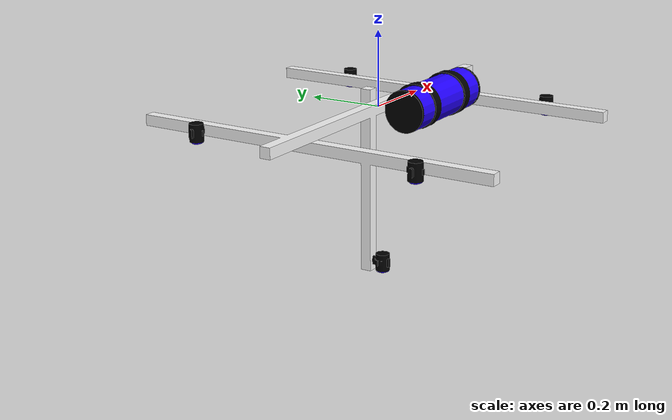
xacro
<?xml version="1.0"?>
<robot name="sam_auv" xmlns:xacro="http://www.ros.org/wiki/xacro">

  <!-- Meshes. -->
  <xacro:property name="visual_mesh_file" value="file://$(find sam_description)/mesh/docking_station.dae"/>

  <!-- Links. -->
  <link name="docking_station_link">
    <visual>
      <origin xyz="0 0 0" rpy="0 0 0"/>
      <geometry>
        <mesh filename="${visual_mesh_file}" scale="1 1 1"/>
      </geometry>
    </visual>
  </link>

</robot>
